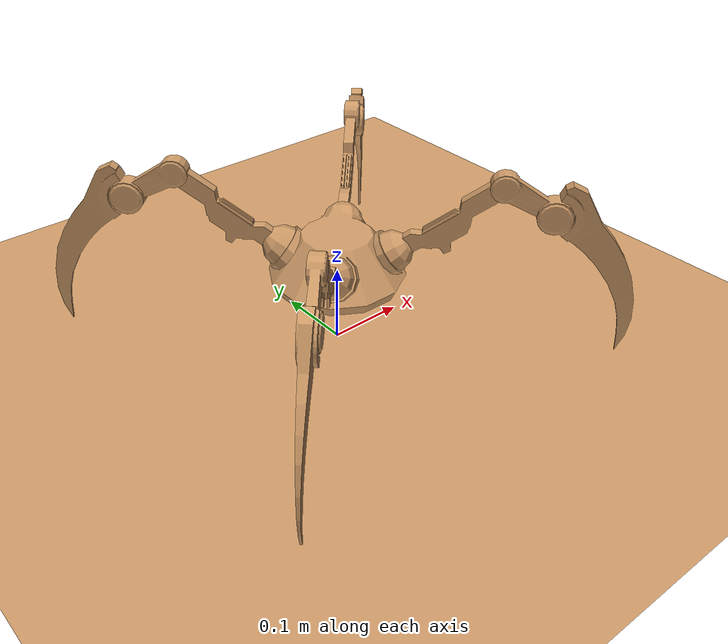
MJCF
<?xml version="1.0"?>
<mujoco model="spider scene">
  <compiler angle="degree" coordinate="local" inertiafromgeom="true"/>
  <option integrator="RK4" timestep="0.01"/>
  <default>
    <joint armature="1" damping="1" limited="true"/>
    <geom conaffinity="0" condim="3" density="5.0" friction="1 0.5 0.5" margin="0.01" rgba="0.8 0.6 0.4 1"/>
  </default>
  <include file="assets/original/SpiderOrange/SpiderOrange.xml"/>
  <statistic center="0 0 0.1" extent="0.5"/>
  <visual>
    <headlight diffuse="0.6 0.6 0.6" ambient="0.3 0.3 0.3" specular="0 0 0"/>
    <rgba haze="0.15 0.25 0.35 1"/>
    <global azimuth="-130" elevation="-20"/>
  </visual>
  <asset>
    <texture type="skybox" builtin="gradient" rgb1="0.3 0.5 0.7" rgb2="0 0 0" width="512" height="3072"/>
    <texture type="2d" name="groundplane" builtin="checker" mark="edge" rgb1="0.2 0.3 0.4" rgb2="0.1 0.2 0.3" markrgb="0.8 0.8 0.8" width="300" height="300"/>
    <material name="groundplane" texture="groundplane" texuniform="true" texrepeat="5 5" reflectance="0.2"/>
  </asset>
  <worldbody>
    <light pos="0 0 1.5" dir="0 0 -1" directional="true"/>
    <geom name="floor" pos="0 0 0" conaffinity="1" condim="3" size="0 0 0.05" type="plane" material="groundplane"/>
  </worldbody>
</mujoco>

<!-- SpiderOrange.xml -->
<mujoco model="SpiderOrange">
  <compiler inertiafromgeom="true"/>
  <default>
    <default class="Leg_Joint">
      <joint type="ball" range="0 60"/>
    </default>
    <default class="Leg_001_Joint">
      <joint type="hinge" range="-30 30"/>
    </default>
    <default class="Leg_002_Joint">
      <joint type="hinge" range="-30 30"/>
    </default>
    <default class="visual">
      <geom group="2" type="mesh" contype="0" conaffinity="0"/>
    </default>
    <default class="collision">
      <geom group="3" type="mesh" density="800"/>
    </default>
    <default class="motor">
      <motor ctrlrange="-1.0 1.0" gear="10"/>
    </default>
  </default>
  <asset>
    <texture type="2d" name="SpiderAlbedoTransparency" file="NPCSpider_DefaultMaterial_AlbedoTransparency.png"/>
    <material name="Material.001" texture="SpiderAlbedoTransparency" specular="0.5" shininess="0.25"/>
    <mesh file="Body.obj"/>
    <mesh file="Leg.FL.obj"/>
    <mesh file="Leg.FL.001.obj"/>
    <mesh file="Leg.FL.002.obj"/>
    <mesh file="Leg.FR.obj"/>
    <mesh file="Leg.FR.001.obj"/>
    <mesh file="Leg.FR.002.obj"/>
    <mesh file="Leg.BR.obj"/>
    <mesh file="Leg.BR.001.obj"/>
    <mesh file="Leg.BR.002.obj"/>
    <mesh file="Leg.BL.obj"/>
    <mesh file="Leg.BL.001.obj"/>
    <mesh file="Leg.BL.002.obj"/>
  </asset>
  <worldbody>
    <body name="SpiderOrange">
      <camera name="track" mode="trackcom" pos="0 -3 0.3" xyaxes="1 0 0 0 0 1"/>
      <joint armature="0" damping="0" limited="false" margin="0.01" name="root" pos="0 0 0" type="free"/>
      <geom mesh="Body" material="Material.001" class="visual"/>
      <geom mesh="Body" class="collision" density="400"/>
      <body name="FL_Leg">
        <joint name="FL_Leg_Joint" pos="-0.0516 0.0519 0.1365" class="Leg_Joint"/>
        <geom mesh="Leg.FL" material="Material.001" class="visual"/>
        <geom mesh="Leg.FL" class="collision"/>
        <body name="FL_Leg_001">
          <joint name="FL_Leg_001_Joint" pos="-0.1388 0.1391 0.2286" axis="1 1 0" class="Leg_001_Joint"/>
          <geom mesh="Leg.FL.001" material="Material.001" class="visual"/>
          <geom mesh="Leg.FL.001" class="collision"/>
          <body name="FL_Leg_002">
            <joint name="FL_Leg_002_Joint" pos="-0.1827 0.1830 0.1929" axis="1 1 0" class="Leg_002_Joint"/>
            <geom mesh="Leg.FL.002" material="Material.001" class="visual"/>
            <geom mesh="Leg.FL.002" class="collision"/>
          </body>
        </body>
      </body>
      <body name="FR_Leg">
        <joint name="FR_Leg_Joint" pos="0.0533 0.0540 0.1375" class="Leg_Joint"/>
        <geom mesh="Leg.FR" material="Material.001" class="visual"/>
        <geom mesh="Leg.FR" class="collision"/>
        <body name="FR_Leg_001">
          <joint name="FR_Leg_001_Joint" pos="0.1382 0.1390 0.2279" axis="1 -1 0" class="Leg_001_Joint"/>
          <geom mesh="Leg.FR.001" material="Material.001" class="visual"/>
          <geom mesh="Leg.FR.001" class="collision"/>
          <body name="FR_Leg_002">
            <joint name="FR_Leg_002_Joint" pos="0.1822 0.1830 0.1929" axis="1 -1 0" class="Leg_002_Joint"/>
            <geom mesh="Leg.FR.002" material="Material.001" class="visual"/>
            <geom mesh="Leg.FR.002" class="collision"/>
          </body>
        </body>
      </body>
      <body name="BR_Leg">
        <joint name="BR_Leg_Joint" pos="0.0528 -0.0525 0.1365" class="Leg_Joint"/>
        <geom mesh="Leg.BR" material="Material.001" class="visual"/>
        <geom mesh="Leg.BR" class="collision"/>
        <body name="BR_Leg_001">
          <joint name="BR_Leg_001_Joint" pos="0.1400 -0.1397 0.2286" axis="-1 -1 0" class="Leg_001_Joint"/>
          <geom mesh="Leg.BR.001" material="Material.001" class="visual"/>
          <geom mesh="Leg.BR.001" class="collision"/>
          <body name="BR_Leg_002">
            <joint name="BR_Leg_002_Joint" pos="0.1839 -0.1836 0.1929" axis="-1 -1 0" class="Leg_002_Joint"/>
            <geom mesh="Leg.BR.002" material="Material.001" class="visual"/>
            <geom mesh="Leg.BR.002" class="collision"/>
          </body>
        </body>
      </body>
      <body name="BL_Leg">
        <joint name="BL_Leg_Joint" pos="-0.0543 -0.0536 0.1375" class="Leg_Joint"/>
        <geom mesh="Leg.BL" material="Material.001" class="visual"/>
        <geom mesh="Leg.BL" class="collision"/>
        <body name="BL_Leg_001">
          <joint name="BL_Leg_001_Joint" pos="-0.1393 -0.1385 0.2279" axis="-1 1 0" class="Leg_001_Joint"/>
          <geom mesh="Leg.BL.001" material="Material.001" class="visual"/>
          <geom mesh="Leg.BL.001" class="collision"/>
          <body name="BL_Leg_002">
            <joint name="BL_Leg_002_Joint" pos="-0.1833 -0.1825 0.1929" axis="-1 1 0" class="Leg_002_Joint"/>
            <geom mesh="Leg.BL.002" material="Material.001" class="visual"/>
            <geom mesh="Leg.BL.002" class="collision"/>
          </body>
        </body>
      </body>
    </body>
  </worldbody>
  <actuator>
    <motor name="FL_Leg_Motor" joint="FL_Leg_Joint" class="motor"/>
    <motor name="FL_Leg_001_Motor" joint="FL_Leg_001_Joint" class="motor"/>
    <motor name="FL_Leg_002_Motor" joint="FL_Leg_002_Joint" class="motor"/>
    <motor name="FR_Leg_Motor" joint="FR_Leg_Joint" class="motor"/>
    <motor name="FR_Leg_001_Motor" joint="FR_Leg_001_Joint" class="motor"/>
    <motor name="FR_Leg_002_Motor" joint="FR_Leg_002_Joint" class="motor"/>
    <motor name="BR_Leg_Motor" joint="BR_Leg_Joint" class="motor"/>
    <motor name="BR_Leg_001_Motor" joint="BR_Leg_001_Joint" class="motor"/>
    <motor name="BR_Leg_002_Motor" joint="BR_Leg_002_Joint" class="motor"/>
    <motor name="BL_Leg_Motor" joint="BL_Leg_Joint" class="motor"/>
    <motor name="BL_Leg_001_Motor" joint="BL_Leg_001_Joint" class="motor"/>
    <motor name="BL_Leg_002_Motor" joint="BL_Leg_002_Joint" class="motor"/>
  </actuator>
</mujoco>
